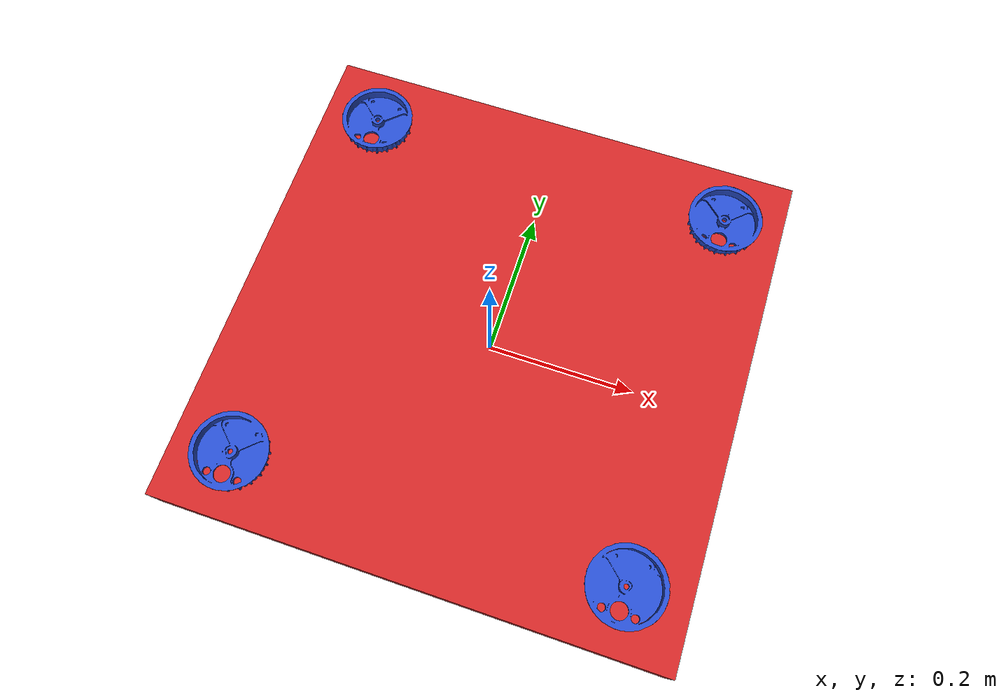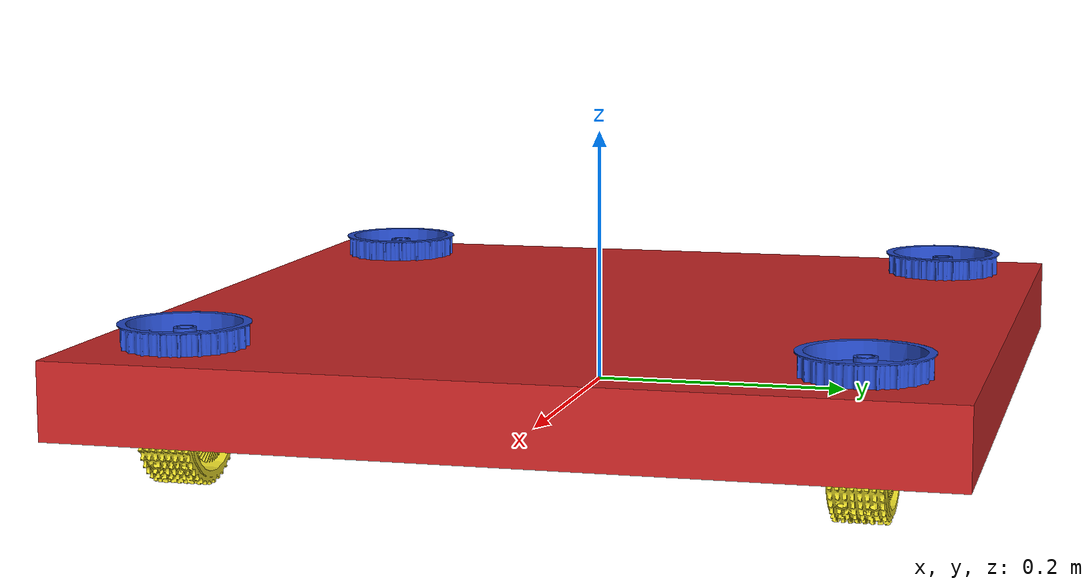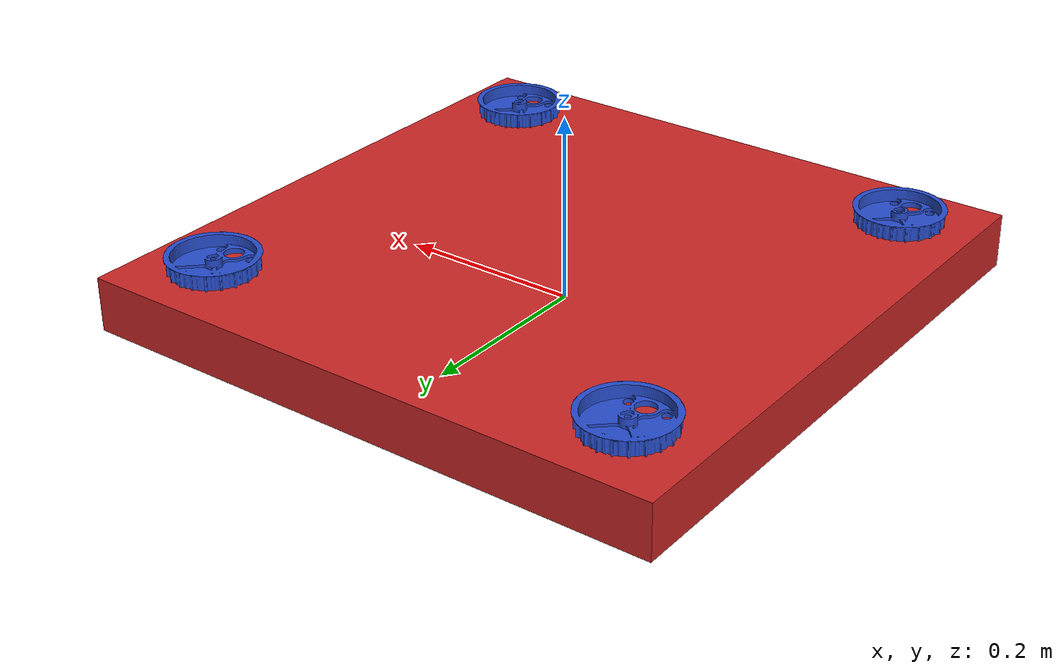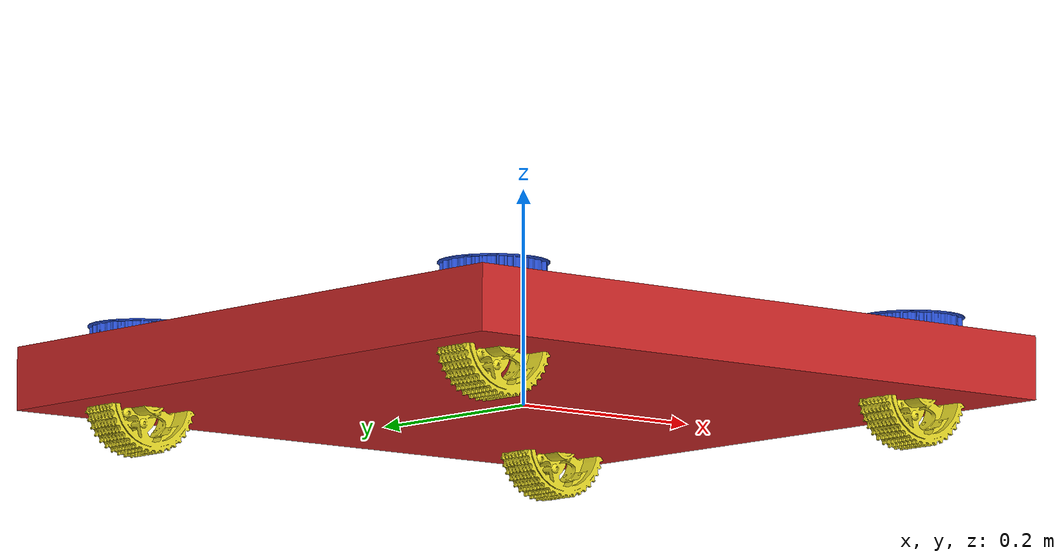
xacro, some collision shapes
<?xml version="1.0"?>
<robot name="phyto" xmlns:xacro="http://www.ros.org/wiki/xacro">
  <xacro:include filename="$(find phyto_description)/urdf/util/macros.xacro" />
  <xacro:include filename="$(find phyto_description)/urdf/util/materials.xacro" />
  <xacro:include filename="$(find phyto_description)/urdf/parts/swerve_chassis.xacro" />
  <xacro:include filename="$(find phyto_description)/urdf/parts/swerve_axle.xacro" />

  <xacro:property name="axle_pos" value="2" />

  <link name="base_link"></link>

  <xacro:square_chassis prefix="swerve" parent="base_link">
    <origin xyz="0 0 0" rpy="0 0 0" />
  </xacro:square_chassis>

  <xacro:swerve_axle prefix="front_left" parent="base_link">
    <origin xyz=" -.25 .25 .05" rpy="0 0 0" />
  </xacro:swerve_axle>
  <xacro:swerve_axle prefix="front_right" parent="base_link">
    <origin xyz=" .25 -.25 .05" rpy="0 0 0" />
  </xacro:swerve_axle>
  <xacro:swerve_axle prefix="back_left" parent="base_link">
    <origin xyz=" .25 .25 .05" rpy="0 0 0" />
  </xacro:swerve_axle>
  <xacro:swerve_axle prefix="back_right" parent="base_link">
    <origin xyz=" -.25 -.25 .05" rpy="0 0 0" />
  </xacro:swerve_axle>

  <gazebo>
    <plugin
      filename="gz-sim-joint-controller-system"
      name="gz::sim::systems::JointController">
      <joint_name>front_left_wheel_joint</joint_name>
      <joint_name>front_right_wheel_joint</joint_name>
      <joint_name>back_left_wheel_joint</joint_name>
      <joint_name>back_right_wheel_joint</joint_name>
      <initial_velocity>0.0</initial_velocity>
    </plugin>

  </gazebo>
</robot>

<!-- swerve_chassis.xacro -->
<robot xmlns:xacro="http://www.ros.org/wiki/xacro">

  <!-- Chassis Properties -->
  <xacro:property name="chassis_length" value="0.661" />
  <xacro:property name="chassis_width" value="0.661" />
  <xacro:property name="chassis_height" value="0.059" />
  <xacro:property name="chassis_weight" value="19.0508795" />

    <xacro:macro name="square_chassis" params="prefix parent *origin">

        <link name="${prefix}_chassis_link">
            <xacro:inertial_box mass="${chassis_weight}" x="${chassis_length}" y="${chassis_width}" z="${chassis_height}">
                <origin xyz="0 0 ${chassis_height/2}" rpy="0 0 0" />
            </xacro:inertial_box>
            <visual>
                <origin xyz="0 0 .048" rpy="0 0 0" />
                <geometry>
                    <mesh filename="package://phyto_description/meshes/SwerveChassis.stl" />
                </geometry>
                <material name="red"/>
            </visual>
            <collision>
                <origin xyz="0 0 ${chassis_height/2}" rpy="0 0 0" />
                <geometry>
                    <box size="${chassis_length} ${chassis_width} ${chassis_height} " />
                </geometry>
            </collision>
        </link>

        <joint name="${prefix}_chassis_joint" type="fixed">
            <parent link="${parent}" />
            <child link="${prefix}_chassis_link" />
            <xacro:insert_block name="origin" />
        </joint>
    </xacro:macro>

</robot>

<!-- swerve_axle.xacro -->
<robot xmlns:xacro="http://www.ros.org/wiki/xacro">

    <!-- Chassis Properties -->
    <xacro:property name="axle_radius" value="0.05" />
    <xacro:property name="axle_length" value="0.03" />
    <xacro:property name="axle_mass" value="0.23739" />
    <xacro:property name="wheel_radius" value="0.0508" />
    <xacro:property name="wheel_length" value="0.0381" />
    <xacro:property name="wheel_mass" value="0.23133211" />
    <xacro:property name="wheel_z_offset" value="-0.0425"/>

    <xacro:macro name="swerve_axle" params="prefix parent *origin">
        <link name="${prefix}_axle_link">
            <visual>
                <origin xyz="0 0 0" rpy="0 0 0" />
                <geometry>
                    <mesh filename="package://phyto_description/meshes/SwerveAxle.stl"/>
                </geometry>
                <material name="blue" />
            </visual>
            <xacro:inertial_cylinder mass="${axle_mass}" radius="${axle_radius}" length="${axle_length}" >
                <origin xyz="0 0 -${axle_length/2}" rpy="0 0 0" />
            </xacro:inertial_cylinder>
        </link>

        <joint name="${prefix}_axle_joint" type="continuous">
            <parent link="${parent}" />
            <child link="${prefix}_axle_link" />
            <xacro:insert_block name="origin" />
            <axis xyz="0 0 -1" />
            <dynamics friction="0.1" />
        </joint>

        <link name="${prefix}_wheel_link">
            <visual>
                <origin xyz="0 0 0" rpy="0 0 ${pi/2}" />
                <geometry>
                    <mesh filename="package://phyto_description/meshes/SwerveWheel.stl"/>
                </geometry>
                <material name="yellow" />
            </visual>
            <collision>
                <origin xyz="0 0 0" rpy="${pi / 2} 0 0"/>
                <geometry>
                    <cylinder length="${wheel_length}" radius="${wheel_radius}"/>
                </geometry>
            </collision>
            <xacro:inertial_cylinder mass="${wheel_mass}" radius="${wheel_radius}" length="${wheel_length}" >
                <origin xyz="0 0 0" rpy="${pi / 2} 0 0" />
            </xacro:inertial_cylinder>
        </link>

        <joint name="${prefix}_wheel_joint" type="continuous">
            <parent link="${prefix}_axle_link" />
            <child link="${prefix}_wheel_link" />
            <origin xyz="0 0 ${wheel_z_offset}" rpy="0 0 0"/>
            <axis xyz="0 1 0" />
            <dynamics friction="0.1" />
        </joint>

    </xacro:macro>

</robot>
